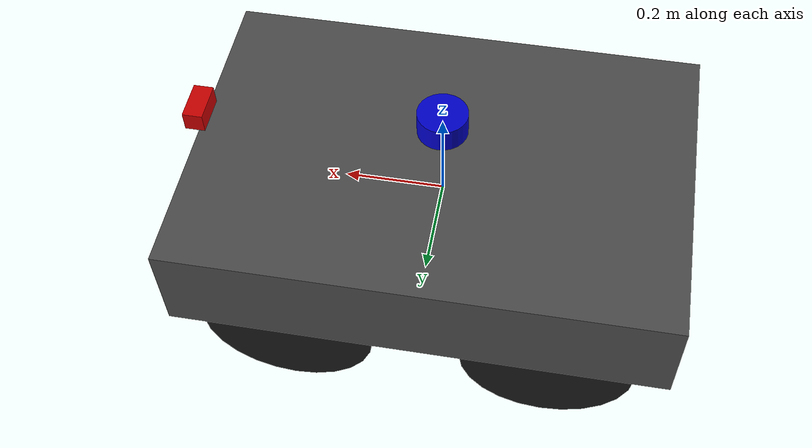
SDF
<?xml version="1.0"?>
<sdf version="1.9">
  <model name="husky_leader">

    <!--
      static = false means physics applies (gravity, collisions, forces).
      If true, the robot would float in place and ignore cmd_vel.
    -->
    <static>false</static>

    <link name="base_link">
      <inertial>
        <mass>50.0</mass>
        <inertia>
          <ixx>1.0417</ixx>
          <iyy>1.5042</iyy>
          <izz>2.1042</izz>
          <ixy>0</ixy>
          <ixz>0</ixz>
          <iyz>0</iyz>
        </inertia>
      </inertial>

      <!--
        Collision: the shape Gazebo uses to detect contacts.
        Simpler than visual — a box is fine for a rectangular robot.
      -->
      <collision name="chassis_collision">
        <geometry>
          <box><size>0.99 0.67 0.20</size></box>
        </geometry>
      </collision>

      <visual name="chassis_visual">
        <geometry>
          <box><size>0.99 0.67 0.20</size></box>
        </geometry>
        <material>
          <ambient>0.2 0.2 0.2 1</ambient>
          <diffuse>0.3 0.3 0.3 1</diffuse>  <!-- dark grey, like a real Husky -->
        </material>
      </visual>

      <sensor name="imu_sensor" type="imu">
        <always_on>true</always_on>
        <update_rate>100</update_rate>  <!-- 100 Hz, typical for IMU -->
        <topic>leader/imu/data</topic>
        <imu>
          <angular_velocity>
            <x><noise type="gaussian"><mean>0</mean><stddev>0.001</stddev></noise></x>
            <y><noise type="gaussian"><mean>0</mean><stddev>0.001</stddev></noise></y>
            <z><noise type="gaussian"><mean>0</mean><stddev>0.001</stddev></noise></z>
          </angular_velocity>
          <linear_acceleration>
            <x><noise type="gaussian"><mean>0</mean><stddev>0.01</stddev></noise></x>
            <y><noise type="gaussian"><mean>0</mean><stddev>0.01</stddev></noise></y>
            <z><noise type="gaussian"><mean>0</mean><stddev>0.01</stddev></noise></z>
          </linear_acceleration>
        </imu>
      </sensor>

      <sensor name="navsat_sensor" type="navsat">
        <always_on>true</always_on>
        <update_rate>5</update_rate>  <!-- 5 Hz, typical for GPS modules -->
        <topic>leader/navsat</topic>
        <navsat>
          <position_sensing>
            <horizontal>
              <!-- Noise here is applied directly to lat/lon (degrees), not meters.
                   0.5 m of real-world GPS error ≈ 0.5 / 111320 deg ≈ 0.0000045 deg. -->
              <noise type="gaussian"><mean>0</mean><stddev>0.0000045</stddev></noise>
            </horizontal>
            <vertical>
              <!-- Altitude stays in meters, so 1.0 m stddev is fine as-is. -->
              <noise type="gaussian"><mean>0</mean><stddev>1.0</stddev></noise>
            </vertical>
          </position_sensing>
        </navsat>
      </sensor>

    </link>

    <link name="lidar_link">
      <pose relative_to="base_link">0 0 0.20 0 0 0</pose>
      <!-- x y z  roll pitch yaw — 0.20m above chassis center -->

      <inertial>
        <mass>0.5</mass>
        <inertia>
          <ixx>0.001</ixx><iyy>0.001</iyy><izz>0.001</izz>
          <ixy>0</ixy><ixz>0</ixz><iyz>0</iyz>
        </inertia>
      </inertial>

      <collision name="lidar_collision">
        <geometry><cylinder><radius>0.05</radius><length>0.05</length></cylinder></geometry>
      </collision>

      <visual name="lidar_visual">
        <geometry><cylinder><radius>0.05</radius><length>0.05</length></cylinder></geometry>
        <material>
          <ambient>0.0 0.0 0.8 1</ambient>
          <diffuse>0.0 0.0 0.8 1</diffuse>  <!-- blue cylinder -->
        </material>
      </visual>

      <sensor name="lidar_sensor" type="gpu_lidar">
        <always_on>true</always_on>
        <update_rate>10</update_rate>  <!-- 10 Hz scan rate -->
        <topic>leader/scan</topic>
        <lidar>
          <scan>
            <horizontal>
              <samples>360</samples>        <!-- one ray per degree -->
              <resolution>1</resolution>
              <min_angle>-3.14159</min_angle>
              <max_angle>3.14159</max_angle>
            </horizontal>
          </scan>
          <range>
            <min>0.15</min>   <!-- ignore anything closer than 15 cm -->
            <max>30.0</max>   <!-- 30 m max range -->
            <resolution>0.01</resolution>
          </range>
          <noise>
            <type>gaussian</type>
            <mean>0</mean>
            <stddev>0.01</stddev>
          </noise>
        </lidar>
      </sensor>

    </link>

    <!-- Fixed joint: bolt the lidar mount to the chassis -->
    <joint name="lidar_joint" type="fixed">
      <parent>base_link</parent>
      <child>lidar_link</child>
    </joint>

    <link name="camera_link">
      <!-- Mounted at front of chassis, looking forward -->
      <pose relative_to="base_link">0.49 0 0.15 0 0 0</pose>

      <inertial>
        <mass>0.2</mass>
        <inertia>
          <ixx>0.0001</ixx><iyy>0.0001</iyy><izz>0.0001</izz>
          <ixy>0</ixy><ixz>0</ixz><iyz>0</iyz>
        </inertia>
      </inertial>

      <collision name="camera_collision">
        <geometry><box><size>0.04 0.08 0.04</size></box></geometry>
      </collision>

      <visual name="camera_visual">
        <geometry><box><size>0.04 0.08 0.04</size></box></geometry>
        <material>
          <ambient>0.8 0.0 0.0 1</ambient>
          <diffuse>0.8 0.0 0.0 1</diffuse>  <!-- red box -->
        </material>
      </visual>

      <sensor name="camera_sensor" type="camera">
        <always_on>true</always_on>
        <update_rate>30</update_rate>
        <topic>leader/camera/image</topic>
        <camera>
          <horizontal_fov>1.3962634</horizontal_fov>
          <image>
            <width>640</width>
            <height>480</height>
            <format>R8G8B8</format>
          </image>
          <clip>
            <near>0.1</near>
            <far>100.0</far>
          </clip>
          <noise>
            <type>gaussian</type>
            <mean>0</mean>
            <stddev>0.005</stddev>
          </noise>
        </camera>
      </sensor>

    </link>

    <joint name="camera_joint" type="fixed">
      <parent>base_link</parent>
      <child>camera_link</child>
    </joint>

    <!-- ── FRONT LEFT WHEEL ── -->
    <link name="front_left_wheel">
      <pose relative_to="base_link">0.256 0.2855 -0.1 -1.5708 0 0</pose>

      <inertial>
        <mass>2.5</mass>
        <inertia>
          <ixx>0.0073</ixx><iyy>0.0073</iyy><izz>0.0036</izz>
          <ixy>0</ixy><ixz>0</ixz><iyz>0</iyz>
        </inertia>
      </inertial>

      <collision name="collision">
        <geometry><cylinder><radius>0.17</radius><length>0.08</length></cylinder></geometry>
        <surface>
          <friction>
            <ode><mu>1.0</mu><mu2>0.5</mu2></ode>
          </friction>
          <contact>
            <ode><kp>1e6</kp><kd>500</kd></ode>
          </contact>
        </surface>
      </collision>

      <visual name="visual">
        <geometry><cylinder><radius>0.17</radius><length>0.08</length></cylinder></geometry>
        <material>
          <ambient>0.1 0.1 0.1 1</ambient>
          <diffuse>0.1 0.1 0.1 1</diffuse>  <!-- black wheels -->
        </material>
      </visual>
    </link>

    <joint name="front_left_wheel_joint" type="revolute">
      <parent>base_link</parent>
      <child>front_left_wheel</child>
      <axis>
        <xyz>0 0 1</xyz>  <!-- rotation axis: Z in wheel frame = Y in world (because of the roll) -->
        <limit><lower>-1e16</lower><upper>1e16</upper></limit>  <!-- unlimited rotation -->
      </axis>
    </joint>

    <!-- ── FRONT RIGHT WHEEL ── -->
    <link name="front_right_wheel">
      <pose relative_to="base_link">0.256 -0.2855 -0.1 -1.5708 0 0</pose>

      <inertial>
        <mass>2.5</mass>
        <inertia>
          <ixx>0.0073</ixx><iyy>0.0073</iyy><izz>0.0036</izz>
          <ixy>0</ixy><ixz>0</ixz><iyz>0</iyz>
        </inertia>
      </inertial>

      <collision name="collision">
        <geometry><cylinder><radius>0.17</radius><length>0.08</length></cylinder></geometry>
        <surface>
          <friction>
            <ode><mu>1.0</mu><mu2>0.5</mu2></ode>
          </friction>
          <contact>
            <ode><kp>1e6</kp><kd>500</kd></ode>
          </contact>
        </surface>
      </collision>

      <visual name="visual">
        <geometry><cylinder><radius>0.17</radius><length>0.08</length></cylinder></geometry>
        <material>
          <ambient>0.1 0.1 0.1 1</ambient>
          <diffuse>0.1 0.1 0.1 1</diffuse>
        </material>
      </visual>
    </link>

    <joint name="front_right_wheel_joint" type="revolute">
      <parent>base_link</parent>
      <child>front_right_wheel</child>
      <axis>
        <xyz>0 0 1</xyz>
        <limit><lower>-1e16</lower><upper>1e16</upper></limit>
      </axis>
    </joint>

    <!-- ── REAR LEFT WHEEL ── -->
    <link name="rear_left_wheel">
      <pose relative_to="base_link">-0.256 0.2855 -0.1 -1.5708 0 0</pose>

      <inertial>
        <mass>2.5</mass>
        <inertia>
          <ixx>0.0073</ixx><iyy>0.0073</iyy><izz>0.0036</izz>
          <ixy>0</ixy><ixz>0</ixz><iyz>0</iyz>
        </inertia>
      </inertial>

      <collision name="collision">
        <geometry><cylinder><radius>0.17</radius><length>0.08</length></cylinder></geometry>
        <surface>
          <friction>
            <ode><mu>1.0</mu><mu2>0.5</mu2></ode>
          </friction>
          <contact>
            <ode><kp>1e6</kp><kd>500</kd></ode>
          </contact>
        </surface>
      </collision>

      <visual name="visual">
        <geometry><cylinder><radius>0.17</radius><length>0.08</length></cylinder></geometry>
        <material>
          <ambient>0.1 0.1 0.1 1</ambient>
          <diffuse>0.1 0.1 0.1 1</diffuse>
        </material>
      </visual>
    </link>

    <joint name="rear_left_wheel_joint" type="revolute">
      <parent>base_link</parent>
      <child>rear_left_wheel</child>
      <axis>
        <xyz>0 0 1</xyz>
        <limit><lower>-1e16</lower><upper>1e16</upper></limit>
      </axis>
    </joint>

    <!-- ── REAR RIGHT WHEEL ── -->
    <link name="rear_right_wheel">
      <pose relative_to="base_link">-0.256 -0.2855 -0.1 -1.5708 0 0</pose>

      <inertial>
        <mass>2.5</mass>
        <inertia>
          <ixx>0.0073</ixx><iyy>0.0073</iyy><izz>0.0036</izz>
          <ixy>0</ixy><ixz>0</ixz><iyz>0</iyz>
        </inertia>
      </inertial>

      <collision name="collision">
        <geometry><cylinder><radius>0.17</radius><length>0.08</length></cylinder></geometry>
        <surface>
          <friction>
            <ode><mu>1.0</mu><mu2>0.5</mu2></ode>
          </friction>
          <contact>
            <ode><kp>1e6</kp><kd>500</kd></ode>
          </contact>
        </surface>
      </collision>

      <visual name="visual">
        <geometry><cylinder><radius>0.17</radius><length>0.08</length></cylinder></geometry>
        <material>
          <ambient>0.1 0.1 0.1 1</ambient>
          <diffuse>0.1 0.1 0.1 1</diffuse>
        </material>
      </visual>
    </link>

    <joint name="rear_right_wheel_joint" type="revolute">
      <parent>base_link</parent>
      <child>rear_right_wheel</child>
      <axis>
        <xyz>0 0 1</xyz>
        <limit><lower>-1e16</lower><upper>1e16</upper></limit>
      </axis>
    </joint>

    <plugin filename="gz-sim-diff-drive-system"
            name="gz::sim::systems::DiffDrive">
      <left_joint>front_left_wheel_joint</left_joint>
      <left_joint>rear_left_wheel_joint</left_joint>
      <right_joint>front_right_wheel_joint</right_joint>
      <right_joint>rear_right_wheel_joint</right_joint>
      <wheel_separation>0.571</wheel_separation>
      <wheel_radius>0.17</wheel_radius>
      <max_linear_acceleration>1.0</max_linear_acceleration>
      <max_angular_acceleration>2.0</max_angular_acceleration>
      <max_linear_velocity>2.0</max_linear_velocity>
      <min_linear_velocity>-2.0</min_linear_velocity>
      <max_angular_velocity>2.0</max_angular_velocity>
      <min_angular_velocity>-2.0</min_angular_velocity>
      <topic>leader/cmd_vel</topic>
      <odom_topic>leader/odom</odom_topic>
      <tf_topic>leader/tf</tf_topic>
      <odom_publish_frequency>50</odom_publish_frequency>
    </plugin>

    <!--
      JointStatePublisher: publishes joint positions + velocities.
      Needed by robot_state_publisher to know wheel angles for TF.
    -->
    <plugin filename="gz-sim-joint-state-publisher-system"
            name="gz::sim::systems::JointStatePublisher">
      <topic>leader/joint_states</topic>
    </plugin>

  </model>
</sdf>
